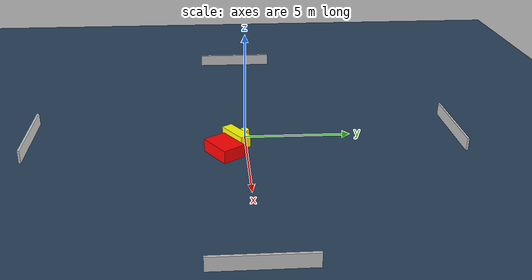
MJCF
<?xml version="1.0" ?>
<mujoco model="generated_environment">
  <option timestep="0.01" integrator="RK4" cone="elliptic"/>
  <default>
    <geom density="1"/>
  </default>
  <asset>
    <texture builtin="gradient" height="3072" name="skybox" rgb1="0.3 0.5 0.7" rgb2="0 0 0" type="skybox" width="512"/>
    <texture builtin="checker" height="300" name="groundplane" rgb1="0.2 0.3 0.4" rgb2="0.1 0.2 0.3" type="2d" width="300"/>
    <material name="groundplane" reflectance="0.2" texrepeat="5 5" texture="groundplane"/>
  </asset>
  <worldbody>
    <light dir="0 0 -1" directional="true" pos="0 0 1.5"/>
    <geom condim="3" friction="0.5 0.005 0.001" material="groundplane" name="floor" pos="0 0 0" size="0 0 0.05" type="plane"/>
    <body name="walls">
      <geom name="wall_1" condim="4" pos="-10.0 0.0 0.3" rgba="0.800000011920929 0.800000011920929 0.800000011920929 1.0" size="0.05 2.0 0.3" type="box"/>
      <geom name="wall_2" condim="4" pos="10.0 0.0 0.3" rgba="0.800000011920929 0.800000011920929 0.800000011920929 1.0" size="0.05 2.0 0.3" type="box"/>
      <geom name="wall_3" condim="4" pos="0.0 -10.0 0.3" rgba="0.800000011920929 0.800000011920929 0.800000011920929 1.0" size="2.0 0.05 0.3" type="box"/>
      <geom name="wall_4" condim="4" pos="0.0 10.0 0.3" rgba="0.800000011920929 0.800000011920929 0.800000011920929 1.0" size="2.0 0.05 0.3" type="box"/>
    </body>
    <body name="robot">
      <joint name="joint_x" type="slide" pos="0 0 0" axis="1 0 0"/>
      <joint name="joint_y" type="slide" pos="0 0 0" axis="0 1 0"/>
      <geom name="robot" type="cylinder" pos="0.0 0.0 0.2" size="0.2 0.2 0.0" mass="5.0" friction="1.0 0.005 0.0001" condim="4" rgba="1.0 1.0 0.0 1.0"/>
    </body>
    <body name="obstacle_1_movable">
      <geom name="obstacle_1_movable" condim="4" pos="0.542596962000645 -0.4277432372172831 0.3" euler="0 0 213.9940895770373" friction="0.0 0.005 0.001" rgba="1.0 1.0 0.0 1.0" size="0.7311758221036286 0.26358151681450825 0.3" type="box" mass="0.1"/>
      <joint type="free"/>
    </body>
    <body name="obstacle_2_static">
      <geom name="obstacle_2_static" condim="4" pos="1.643096992133835 -1.0200930658468428 0.3" euler="0 0 213.9339455934463" friction="0.0 0.005 0.001" rgba="1.0 0.0 0.0 1.0" size="0.7785429021784647 0.5529572712506143 0.3" type="box"/>
    </body>
  </worldbody>
  <actuator>
    <motor name="actuator_x" joint="joint_x" gear="1" ctrlrange="-1 1"/>
    <motor name="actuator_y" joint="joint_y" gear="1" ctrlrange="-1 1"/>
  </actuator>
</mujoco>
